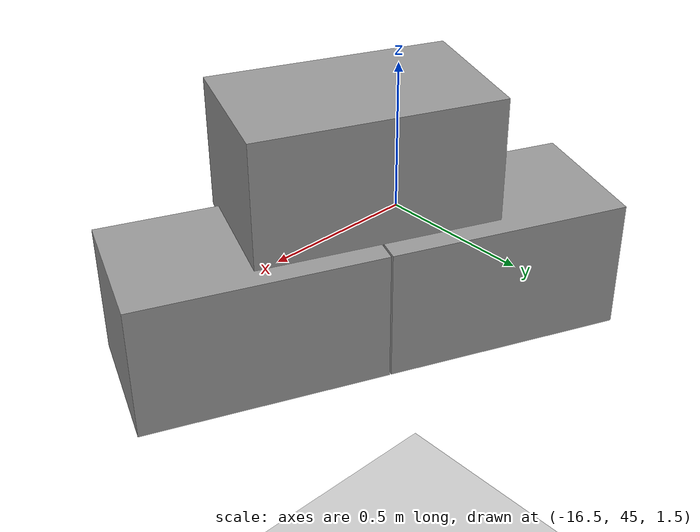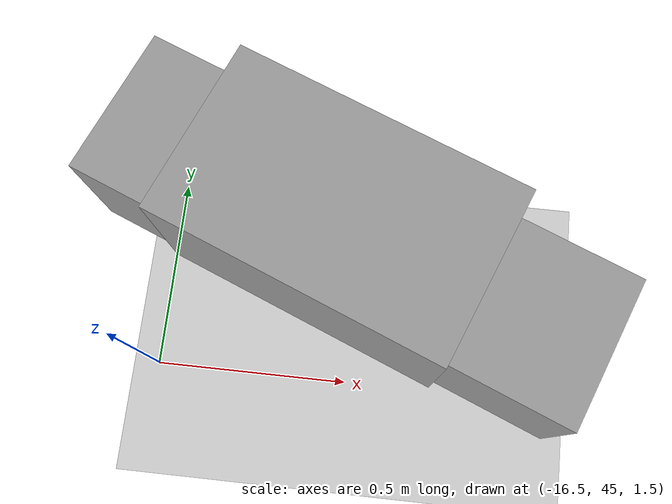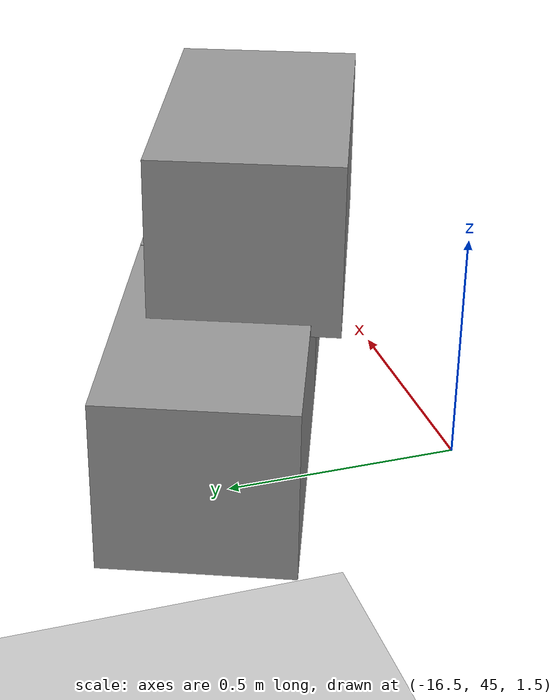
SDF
<sdf version="1.7">
 <world name="default">
  <model name="ground_plane">
   <static>1</static>
   <link name="link">
    <collision name="collision">
     <geometry><plane><normal>0 0 1</normal><size>100 100</size></plane></geometry>
     <surface>
      <contact><collide_bitmask>65535</collide_bitmask></contact>
      <friction><ode><mu>100</mu><mu2>50</mu2></ode></friction>
     </surface>
    </collision>
    <visual name="visual">
     <cast_shadows>0</cast_shadows>
     <geometry><plane><normal>0 0 1</normal><size>100 100</size></plane></geometry>
     <material>
      <script><uri>file://media/materials/scripts/gazebo.material</uri><name>Gazebo/Grey</name></script>
     </material>
    </visual>
   </link>
  </model>
  <model name="Add_Box_clone_clone_3_clone_1">
   <link name="link">
    <inertial>
     <mass>1</mass>
     <inertia>
      <ixx>0.166667</ixx>
      <ixy>0</ixy>
      <ixz>0</ixz>
      <iyy>0.166667</iyy>
      <iyz>0</iyz>
      <izz>0.166667</izz>
     </inertia>
    </inertial>
    <kinematic>1</kinematic>
    <gravity>0</gravity>
    <visual name="visual">
     <geometry><box><size>0.686 0.406 0.381</size></box></geometry>
     <material>
      <script><name>Gazebo/Grey</name><uri>file://media/materials/scripts/gazebo.material</uri></script>
      <shader type="pixel"><normal_map>__default__</normal_map></shader>
      <ambient>0.3 0.3 0.3 1</ambient>
      <diffuse>0.7 0.7 0.7 1</diffuse>
      <specular>0.01 0.01 0.01 1</specular>
      <emissive>0 0 0 1</emissive>
     </material>
    </visual>
    <collision name="collision">
     <geometry><box><size>1 1 1</size></box></geometry>
     <surface>
      <friction>
       <ode><mu>1</mu><mu2>1</mu2><fdir1>0 0 0</fdir1><slip1>0</slip1><slip2>0</slip2></ode>
       <torsional>
        <coefficient>1</coefficient>
        <patch_radius>0</patch_radius>
        <surface_radius>0</surface_radius>
        <use_patch_radius>1</use_patch_radius>
        <ode><slip>0</slip></ode>
       </torsional>
      </friction>
      <bounce><restitution_coefficient>0</restitution_coefficient><threshold>1e+06</threshold></bounce>
      <contact>
       <collide_without_contact>0</collide_without_contact>
       <collide_without_contact_bitmask>1</collide_without_contact_bitmask>
       <collide_bitmask>1</collide_bitmask>
       <ode>
        <soft_cfm>0</soft_cfm>
        <soft_erp>0.2</soft_erp>
        <kp>1e+13</kp>
        <kd>1</kd>
        <max_vel>0.01</max_vel>
        <min_depth>0</min_depth>
       </ode>
       <bullet>
        <split_impulse>1</split_impulse>
        <split_impulse_penetration_threshold>-0.01</split_impulse_penetration_threshold>
        <soft_cfm>0</soft_cfm>
        <soft_erp>0.2</soft_erp>
        <kp>1e+13</kp>
        <kd>1</kd>
       </bullet>
      </contact>
     </surface>
    </collision>
   </link>
   <link name="link_clone">
    <inertial>
     <mass>1</mass>
     <inertia>
      <ixx>0.166667</ixx>
      <ixy>0</ixy>
      <ixz>0</ixz>
      <iyy>0.166667</iyy>
      <iyz>0</iyz>
      <izz>0.166667</izz>
     </inertia>
    </inertial>
    <pose>-0.343354 -0.063316 0.354303 1e-05 -0 0</pose>
    <gravity>0</gravity>
    <visual name="visual">
     <geometry><box><size>0.686 0.406 0.381</size></box></geometry>
     <material>
      <script><name>Gazebo/Grey</name><uri>file://media/materials/scripts/gazebo.material</uri></script>
      <shader type="pixel"><normal_map>__default__</normal_map></shader>
      <ambient>0.3 0.3 0.3 1</ambient>
      <diffuse>0.7 0.7 0.7 1</diffuse>
      <specular>0.01 0.01 0.01 1</specular>
      <emissive>0 0 0 1</emissive>
     </material>
    </visual>
    <collision name="collision">
     <geometry><box><size>1 1 1</size></box></geometry>
     <surface>
      <friction>
       <ode><mu>1</mu><mu2>1</mu2><fdir1>0 0 0</fdir1><slip1>0</slip1><slip2>0</slip2></ode>
       <torsional>
        <coefficient>1</coefficient>
        <patch_radius>0</patch_radius>
        <surface_radius>0</surface_radius>
        <use_patch_radius>1</use_patch_radius>
        <ode><slip>0</slip></ode>
       </torsional>
      </friction>
      <bounce><restitution_coefficient>0</restitution_coefficient><threshold>1e+06</threshold></bounce>
      <contact>
       <collide_without_contact>0</collide_without_contact>
       <collide_without_contact_bitmask>1</collide_without_contact_bitmask>
       <collide_bitmask>1</collide_bitmask>
       <ode>
        <soft_cfm>0</soft_cfm>
        <soft_erp>0.2</soft_erp>
        <kp>1e+13</kp>
        <kd>1</kd>
        <max_vel>0.01</max_vel>
        <min_depth>0</min_depth>
       </ode>
       <bullet>
        <split_impulse>1</split_impulse>
        <split_impulse_penetration_threshold>-0.01</split_impulse_penetration_threshold>
        <soft_cfm>0</soft_cfm>
        <soft_erp>0.2</soft_erp>
        <kp>1e+13</kp>
        <kd>1</kd>
       </bullet>
      </contact>
     </surface>
    </collision>
   </link>
   <link name="link_clone_clone">
    <inertial>
     <mass>1</mass>
     <inertia>
      <ixx>0.166667</ixx>
      <ixy>0</ixy>
      <ixz>0</ixz>
      <iyy>0.166667</iyy>
      <iyz>0</iyz>
      <izz>0.166667</izz>
     </inertia>
    </inertial>
    <pose>-0.690786 -0.000183 -1e-05 2e-05 -0 0</pose>
    <gravity>0</gravity>
    <visual name="visual">
     <geometry><box><size>0.686 0.406 0.381</size></box></geometry>
     <material>
      <script><name>Gazebo/Grey</name><uri>file://media/materials/scripts/gazebo.material</uri></script>
      <shader type="pixel"><normal_map>__default__</normal_map></shader>
      <ambient>0.3 0.3 0.3 1</ambient>
      <diffuse>0.7 0.7 0.7 1</diffuse>
      <specular>0.01 0.01 0.01 1</specular>
      <emissive>0 0 0 1</emissive>
     </material>
    </visual>
    <collision name="collision">
     <geometry><box><size>1 1 1</size></box></geometry>
     <surface>
      <friction>
       <ode><mu>1</mu><mu2>1</mu2><fdir1>0 0 0</fdir1><slip1>0</slip1><slip2>0</slip2></ode>
       <torsional>
        <coefficient>1</coefficient>
        <patch_radius>0</patch_radius>
        <surface_radius>0</surface_radius>
        <use_patch_radius>1</use_patch_radius>
        <ode><slip>0</slip></ode>
       </torsional>
      </friction>
      <bounce><restitution_coefficient>0</restitution_coefficient><threshold>1e+06</threshold></bounce>
      <contact>
       <collide_without_contact>0</collide_without_contact>
       <collide_without_contact_bitmask>1</collide_without_contact_bitmask>
       <collide_bitmask>1</collide_bitmask>
       <ode>
        <soft_cfm>0</soft_cfm>
        <soft_erp>0.2</soft_erp>
        <kp>1e+13</kp>
        <kd>1</kd>
        <max_vel>0.01</max_vel>
        <min_depth>0</min_depth>
       </ode>
       <bullet>
        <split_impulse>1</split_impulse>
        <split_impulse_penetration_threshold>-0.01</split_impulse_penetration_threshold>
        <soft_cfm>0</soft_cfm>
        <soft_erp>0.2</soft_erp>
        <kp>1e+13</kp>
        <kd>1</kd>
       </bullet>
      </contact>
     </surface>
    </collision>
   </link>
   <static>0</static>
   <pose>-15.6972 45.2289 1.61518 0 0 -0.383222</pose>
  </model>
 </world>
</sdf>
